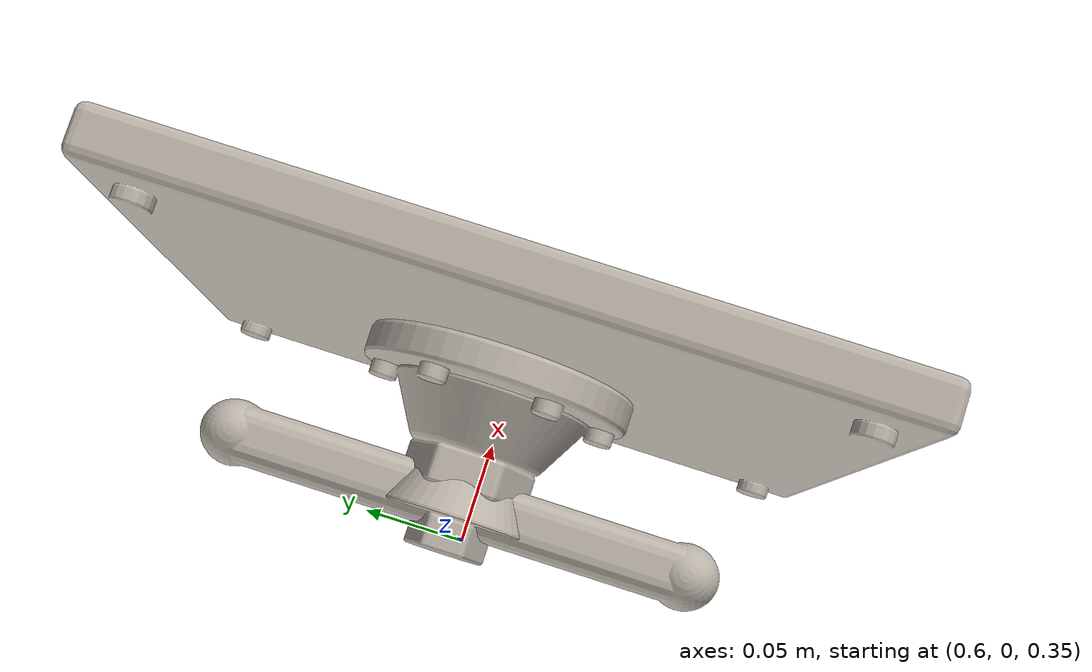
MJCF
<?xml version="1.0"?>
<mujoco model="valve">
  <compiler angle="radian" meshdir="assets" texturedir="assets"/>

  <asset>
    <texture name="valve_panel_tex" type="2d" file="valve_panel_tex.png"/>
    <material name="valve_panel_mat" texture="valve_panel_tex" specular="0.35" shininess="0.25"/>
    <mesh name="valve_panel_vis" file="valve_panel_vis.obj"/>
    <texture name="valve_bonnet_tex" type="2d" file="valve_bonnet_tex.png"/>
    <material name="valve_bonnet_mat" texture="valve_bonnet_tex" specular="0.2" shininess="0.2"/>
    <mesh name="valve_bonnet_vis" file="valve_bonnet_vis.obj"/>
    <texture name="valve_wheel_tex" type="2d" file="valve_wheel_tex.png"/>
    <material name="valve_wheel_mat" texture="valve_wheel_tex" specular="0.2" shininess="0.2"/>
    <mesh name="valve_wheel_vis" file="valve_wheel_vis.obj"/>
  </asset>

  <worldbody>
    <body name="valve_base" pos="0.65 0 0.5" mocap="true">
      <!-- Bulkhead panel + green cast bonnet (flange, neck, packing gland). -->
      <geom name="vis_panel" type="mesh" mesh="valve_panel_vis" material="valve_panel_mat" contype="0" conaffinity="0" group="2" mass="0"/>
      <geom name="vis_bonnet" type="mesh" mesh="valve_bonnet_vis" material="valve_bonnet_mat" contype="0" conaffinity="0" group="2" mass="0"/>
      <geom type="box" name="valve_body" size="0.01 0.15 0.15" pos="0.03 0 0" group="3"
            condim="3" friction="1 0.03 0.003" rgba="0.5 0.5 0.5 0.3"
            contype="2" conaffinity="1" solref="0.01 1"/>
      <!-- Base site at the spoke tip when joint = 0 (spoke along +y). -->
      <site name="base_site" pos="-0.04 0.09 0.0" size="0.004" rgba="0 0 1 0.3"/>
      <body name="handle">
        <!-- Hinge about the approach axis; full turn allowed for the multi-turn target. -->
        <joint name="valve_hinge" type="hinge" axis="1 0 0" pos="0 0 0"
               range="0 6.2831853" limited="true" damping="0.08"/>
        <!-- Dished two-spoke handwheel with knobbed ends, one mesh. -->
        <geom name="vis_wheel" type="mesh" mesh="valve_wheel_vis" material="valve_wheel_mat" contype="0" conaffinity="0" group="2" mass="0"/>
        <!-- Central hub collider. -->
        <geom type="cylinder" name="valve_hub" size="0.02 0.012"
              pos="-0.01 0 0" quat="0.7071 0 0.7071 0" group="3"
              condim="3" friction="1 0.03 0.003" rgba="0.5 0.5 0.5 0.3"
              contype="2" conaffinity="1" solref="0.01 1"/>
        <!-- Spoke A (+y) — the primary pinch target. -->
        <geom type="box" name="handle" pos="-0.04 0.055 0.0" size="0.012 0.055 0.012" group="3"
              condim="3" friction="1 0.03 0.003" rgba="0.5 0.5 0.5 0.3"
              contype="2" conaffinity="1" solref="0.01 1"/>
        <!-- Spoke B (-y) — the regrasp target at 180 deg. -->
        <geom type="box" name="valve_spoke_b" pos="-0.04 -0.055 0.0" size="0.012 0.055 0.012" group="3"
              condim="3" friction="1 0.03 0.003" rgba="0.5 0.5 0.5 0.3"
              contype="2" conaffinity="1" solref="0.01 1"/>
        <site name="object_site" pos="-0.04 0.09 0.0" size="0.004" rgba="1 0 0 1"/>
      </body>
    </body>
  </worldbody>
</mujoco>
